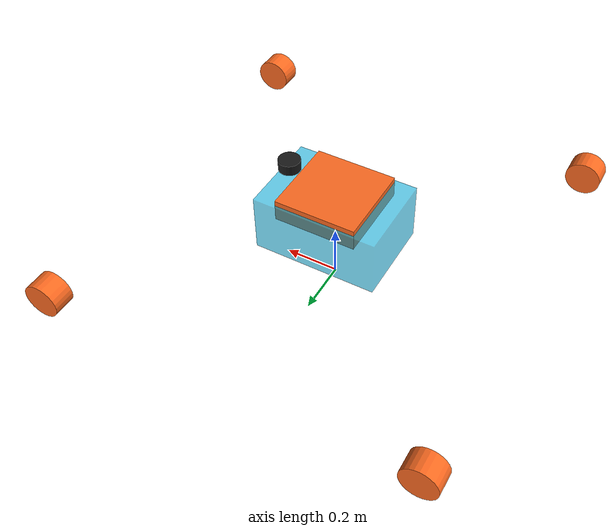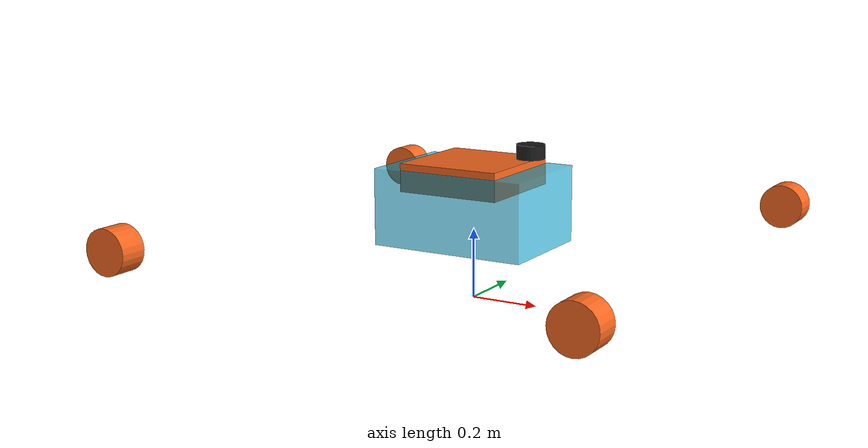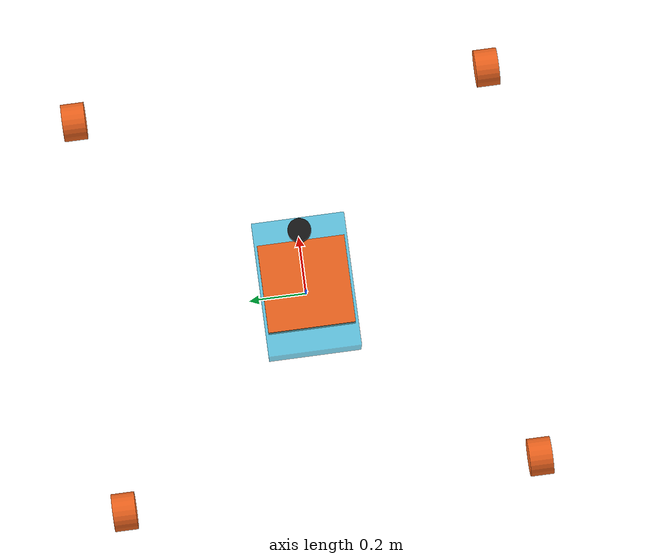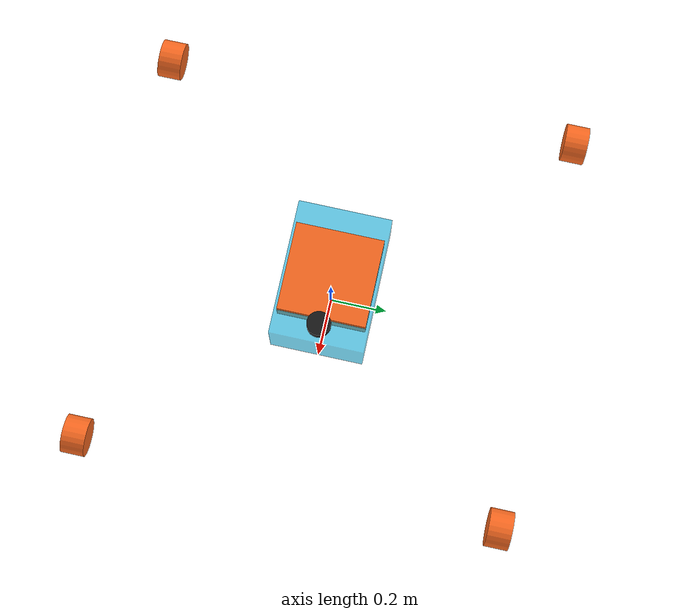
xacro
<?xml version="1.0"?>
<robot xmlns:xacro="http://www.ros.org/wiki/xacro" name="rover_frugal">

  <!-- Constantes Mestres (Fonte Única de Verdade) -->
  <xacro:property name="wheelbase" value="1.36"/>
  <xacro:property name="track_width" value="1.44"/>
  <xacro:property name="r_wheel_max" value="0.210"/> <!-- Roda Phi 420mm (Blondel E=17cm, P=30cm) -->
  <xacro:property name="r_wheel_hub" value="0.065"/>
  <xacro:property name="wheel_width" value="0.080"/>

  <xacro:property name="mass_chassis" value="3.5"/>
  <xacro:property name="mass_payload" value="2.5"/>
  <xacro:property name="mass_knuckle" value="0.25"/>
  <xacro:property name="mass_wheel" value="0.75"/>

  <!-- Materiais RViz -->
  <material name="pvc_white"><color rgba="0.95 0.95 0.95 1.0"/></material>
  <material name="clamp_orange"><color rgba="1.0 0.42 0.13 1.0"/></material>
  <material name="box_cyan"><color rgba="0.0 0.7 0.9 0.6"/></material>
  <material name="wheel_spoke"><color rgba="1.0 0.42 0.13 1.0"/></material>
  <material name="rubber_black"><color rgba="0.1 0.1 0.1 1.0"/></material>

  <!-- Base Link e Chassi em X (Tubos PVC)        -->
  <link name="base_footprint"/>

  <joint name="base_footprint_joint" type="fixed">
    <parent link="base_footprint"/>
    <child link="base_link"/>
    <origin xyz="0 0 ${r_wheel_max + 0.15}" rpy="0 0 0"/>
  </joint>

  <link name="base_link">
    <inertial>
      <origin xyz="0 0 0" rpy="0 0 0"/>
      <mass value="${mass_chassis}"/>
      <inertia ixx="0.45" ixy="0" ixz="0" iyy="0.40" iyz="0" izz="0.75"/>
    </inertial>
    <!-- Hub Central em X -->
    <visual>
      <origin xyz="0 0 0" rpy="0 0 0"/>
      <geometry><box size="0.30 0.30 0.08"/></geometry>
      <material name="clamp_orange"/>
    </visual>
    <collision>
      <origin xyz="0 0 0" rpy="0 0 0"/>
      <geometry><box size="0.30 0.30 0.08"/></geometry>
    </collision>
  </link>

  <!-- Caixa Organizadora Pendular (Carga Útil)   -->
  <link name="payload_box_link">
    <inertial>
      <origin xyz="0 0 -0.05" rpy="0 0 0"/>
      <mass value="${mass_payload}"/>
      <inertia ixx="0.04" ixy="0" ixz="0" iyy="0.06" iyz="0" izz="0.08"/>
    </inertial>
    <visual>
      <origin xyz="0 0 -0.05" rpy="0 0 0"/>
      <geometry><box size="0.46 0.32 0.22"/></geometry>
      <material name="box_cyan"/>
    </visual>
    <collision>
      <origin xyz="0 0 -0.05" rpy="0 0 0"/>
      <geometry><box size="0.46 0.32 0.22"/></geometry>
    </collision>
  </link>

  <joint name="payload_pendulum_joint" type="revolute">
    <parent link="base_link"/>
    <child link="payload_box_link"/>
    <origin xyz="0 0 -0.04" rpy="0 0 0"/>
    <axis xyz="0 1 0"/>
    <limit lower="-0.35" upper="0.35" effort="10.0" velocity="2.0"/>
    <dynamics damping="0.5" friction="0.05"/>
  </joint>

  <!-- Macro: Perna em V Invertido + Manga + Roda -->
  <xacro:macro name="rover_corner" params="prefix pos_x pos_y">
    <!-- Manga de Direção (Knuckle 4WS) -->
    <link name="${prefix}_knuckle_link">
      <inertial>
        <origin xyz="0 0 0" rpy="0 0 0"/>
        <mass value="${mass_knuckle}"/>
        <inertia ixx="0.005" ixy="0" ixz="0" iyy="0.005" iyz="0" izz="0.005"/>
      </inertial>
      <visual>
        <geometry><cylinder radius="0.035" length="0.10"/></geometry>
        <material name="clamp_orange"/>
      </visual>
      <collision>
        <geometry><cylinder radius="0.035" length="0.10"/></geometry>
      </collision>
    </link>

    <!-- Junta de Esterçamento (4WS) -->
    <joint name="${prefix}_steer_joint" type="revolute">
      <parent link="base_link"/>
      <child link="${prefix}_knuckle_link"/>
      <origin xyz="${pos_x} ${pos_y} -0.15" rpy="0 0 0"/>
      <axis xyz="0 0 1"/>
      <limit lower="-0.785" upper="0.785" effort="15.0" velocity="3.0"/>
      <dynamics damping="0.1" friction="0.05"/>
    </joint>

    <!-- Roda de 3 Raios Curvos (4WD) -->
    <link name="${prefix}_wheel_link">
      <inertial>
        <origin xyz="0 0 0" rpy="${pi/2} 0 0"/>
        <mass value="${mass_wheel}"/>
        <inertia ixx="0.012" ixy="0" ixz="0" iyy="0.012" iyz="0" izz="0.020"/>
      </inertial>
      <!-- Cubo Central com Mola C-STS -->
      <visual>
        <origin xyz="0 0 0" rpy="${pi/2} 0 0"/>
        <geometry><cylinder radius="${r_wheel_hub}" length="${wheel_width}"/></geometry>
        <material name="clamp_orange"/>
      </visual>
      <!-- Colisão Cilindro Envoltório com Atrito de Borracha -->
      <collision>
        <origin xyz="0 0 0" rpy="${pi/2} 0 0"/>
        <geometry><cylinder radius="${r_wheel_max}" length="${wheel_width}"/></geometry>
      </collision>
    </link>

    <!-- Junta de Propulsão (4WD) -->
    <joint name="${prefix}_wheel_joint" type="continuous">
      <parent link="${prefix}_knuckle_link"/>
      <child link="${prefix}_wheel_link"/>
      <origin xyz="0 0 0" rpy="0 0 0"/>
      <axis xyz="0 1 0"/>
      <dynamics damping="0.05" friction="0.02"/>
    </joint>

    <!-- Configuração de Atrito no Gazebo Sim (Coulomb mu = 0.85) -->
    <gazebo reference="${prefix}_wheel_link">
      <mu1>0.85</mu1>
      <mu2>0.85</mu2>
      <kp>100000.0</kp>
      <kd>10.0</kd>
      <material>Gazebo/Orange</material>
    </gazebo>
  </xacro:macro>

  <!-- Instanciação das 4 Pernas e Rodas -->
  <xacro:rover_corner prefix="fl" pos_x="${wheelbase/2.0}"  pos_y="${track_width/2.0}"/>
  <xacro:rover_corner prefix="fr" pos_x="${wheelbase/2.0}"  pos_y="-${track_width/2.0}"/>
  <xacro:rover_corner prefix="rl" pos_x="-${wheelbase/2.0}" pos_y="${track_width/2.0}"/>
  <xacro:rover_corner prefix="rr" pos_x="-${wheelbase/2.0}" pos_y="-${track_width/2.0}"/>

  <!-- Sensores: IMU e LiDAR para Nav2 / SLAM     -->
  <link name="imu_link"/>
  <joint name="imu_joint" type="fixed">
    <parent link="payload_box_link"/>
    <child link="imu_link"/>
    <origin xyz="0 0 0.05" rpy="0 0 0"/>
  </joint>

  <link name="lidar_link">
    <visual>
      <geometry><cylinder radius="0.04" length="0.04"/></geometry>
      <material name="rubber_black"/>
    </visual>
  </link>
  <joint name="lidar_joint" type="fixed">
    <parent link="payload_box_link"/>
    <child link="lidar_link"/>
    <origin xyz="0.18 0 0.12" rpy="0 0 0"/>
  </joint>

  <!-- Plugins Gazebo Sim (gz-sim) -->
  <gazebo>
    <plugin filename="gz-sim-joint-state-publisher-system" name="gz::sim::systems::JointStatePublisher">
      <topic>/joint_states</topic>
    </plugin>

    <!-- IMU Plugin -->
    <plugin filename="gz-sim-imu-system" name="gz::sim::systems::Imu"/>
  </gazebo>

  <!-- Configuração do Sensor LiDAR no Gazebo -->
  <gazebo reference="lidar_link">
    <sensor name="lidar_2d" type="gpu_lidar">
      <pose>0 0 0 0 0 0</pose>
      <topic>/scan</topic>
      <update_rate>15</update_rate>
      <lidar>
        <scan>
          <horizontal>
            <samples>360</samples>
            <resolution>1</resolution>
            <min_angle>-3.14159</min_angle>
            <max_angle>3.14159</max_angle>
          </horizontal>
        </scan>
        <range>
          <min>0.12</min>
          <max>12.0</max>
          <resolution>0.01</resolution>
        </range>
      </lidar>
      <visualize>true</visualize>
    </sensor>
  </gazebo>

  <!-- Configuração do Sensor IMU no Gazebo -->
  <gazebo reference="imu_link">
    <sensor name="imu_sensor" type="imu">
      <always_on>1</always_on>
      <update_rate>100</update_rate>
      <visualize>true</visualize>
      <topic>/imu/data</topic>
    </sensor>
  </gazebo>

</robot>
